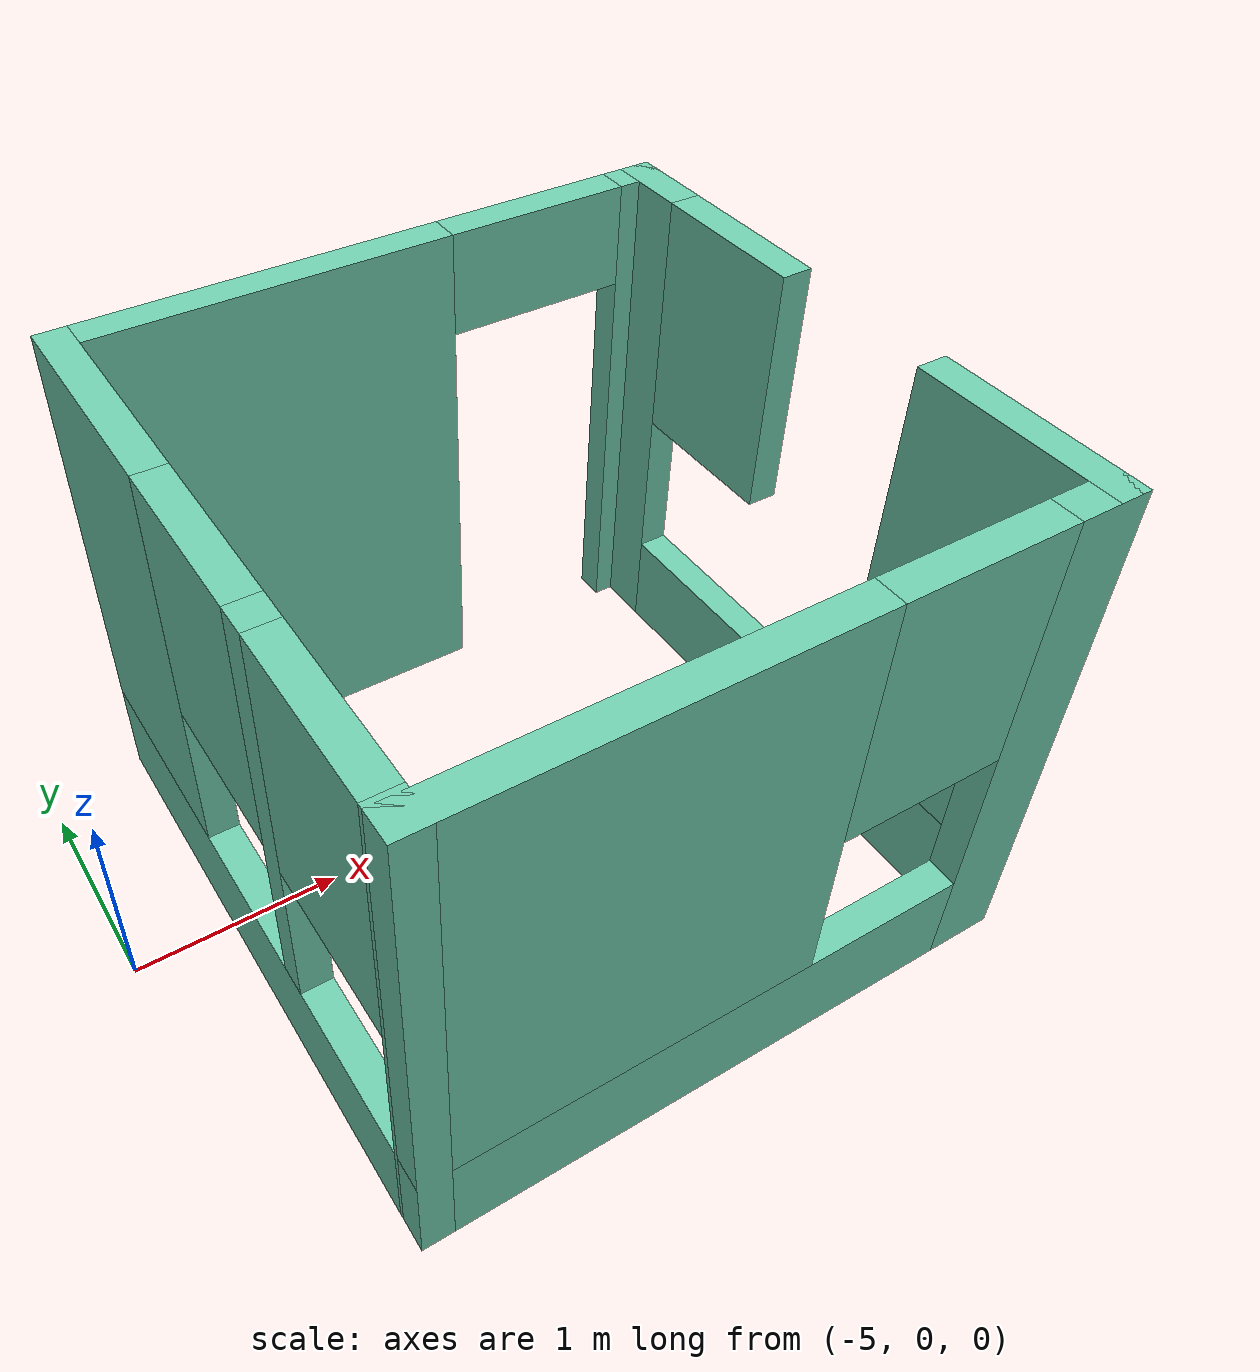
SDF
<?xml version='1.0'?>
<sdf version='1.6'>
  <model name='myoffice'>
    <pose frame=''>-3.01634 -0.28678 0 0 -0 0</pose>
    <link name='Wall_6'>
      <pose frame=''>0 1.425 0 0 -0 0</pose>
      <visual name='Wall_6_Visual_0'>
        <pose frame=''>-0.575359 0 1.25 0 -0 0</pose>
        <geometry>
          <box>
            <size>1.84928 0.15 2.5</size>
          </box>
        </geometry>
        <material>
          <script>
            <uri>file://media/materials/scripts/gazebo.material</uri>
            <name>Gazebo/Grey</name>
          </script>
          <ambient>0.435294 0.796078 0.67451 1</ambient>
        </material>
        <meta>
          <layer>0</layer>
        </meta>
      </visual>
      <collision name='Wall_6_Collision_0'>
        <geometry>
          <box>
            <size>1.84928 0.15 2.5</size>
          </box>
        </geometry>
        <pose frame=''>-0.575359 0 1.25 0 -0 0</pose>
      </collision>
      <visual name='Wall_6_Visual_1'>
        <pose frame=''>1.37464 0 1.25 0 -0 0</pose>
        <geometry>
          <box>
            <size>0.250719 0.15 2.5</size>
          </box>
        </geometry>
        <material>
          <script>
            <uri>file://media/materials/scripts/gazebo.material</uri>
            <name>Gazebo/Grey</name>
          </script>
          <ambient>0.435294 0.796078 0.67451 1</ambient>
        </material>
        <meta>
          <layer>0</layer>
        </meta>
      </visual>
      <collision name='Wall_6_Collision_1'>
        <geometry>
          <box>
            <size>0.250719 0.15 2.5</size>
          </box>
        </geometry>
        <pose frame=''>1.37464 0 1.25 0 -0 0</pose>
      </collision>
      <visual name='Wall_6_Visual_2'>
        <pose frame=''>0.799281 0 2.25 0 -0 0</pose>
        <geometry>
          <box>
            <size>0.9 0.15 0.5</size>
          </box>
        </geometry>
        <material>
          <script>
            <uri>file://media/materials/scripts/gazebo.material</uri>
            <name>Gazebo/Grey</name>
          </script>
          <ambient>0.435294 0.796078 0.67451 1</ambient>
        </material>
        <meta>
          <layer>0</layer>
        </meta>
      </visual>
      <collision name='Wall_6_Collision_2'>
        <geometry>
          <box>
            <size>0.9 0.15 0.5</size>
          </box>
        </geometry>
        <pose frame=''>0.799281 0 2.25 0 -0 0</pose>
      </collision>
    </link>
    <link name='Wall_7'>
      <pose frame=''>1.425 0 0 0 0 -1.5708</pose>
      <visual name='Wall_7_Visual_0'>
        <pose frame=''>-1.29818 0 1.25 0 -0 0</pose>
        <geometry>
          <box>
            <size>0.403644 0.15 2.5</size>
          </box>
        </geometry>
        <material>
          <script>
            <uri>file://media/materials/scripts/gazebo.material</uri>
            <name>Gazebo/Grey</name>
          </script>
          <ambient>0.435294 0.796078 0.67451 1</ambient>
        </material>
        <meta>
          <layer>0</layer>
        </meta>
      </visual>
      <collision name='Wall_7_Collision_0'>
        <geometry>
          <box>
            <size>0.403644 0.15 2.5</size>
          </box>
        </geometry>
        <pose frame=''>-1.29818 0 1.25 0 -0 0</pose>
      </collision>
      <visual name='Wall_7_Visual_1'>
        <pose frame=''>0.201822 0 0.25 0 -0 0</pose>
        <geometry>
          <box>
            <size>2.59636 0.15 0.5</size>
          </box>
        </geometry>
        <material>
          <script>
            <uri>file://media/materials/scripts/gazebo.material</uri>
            <name>Gazebo/Grey</name>
          </script>
          <ambient>0.435294 0.796078 0.67451 1</ambient>
        </material>
        <meta>
          <layer>0</layer>
        </meta>
      </visual>
      <collision name='Wall_7_Collision_1'>
        <geometry>
          <box>
            <size>2.59636 0.15 0.5</size>
          </box>
        </geometry>
        <pose frame=''>0.201822 0 0.25 0 -0 0</pose>
      </collision>
      <visual name='Wall_7_Visual_2'>
        <pose frame=''>0.998102 0 1.5 0 -0 0</pose>
        <geometry>
          <box>
            <size>1.0038 0.15 2</size>
          </box>
        </geometry>
        <material>
          <script>
            <uri>file://media/materials/scripts/gazebo.material</uri>
            <name>Gazebo/Grey</name>
          </script>
          <ambient>0.435294 0.796078 0.67451 1</ambient>
        </material>
        <meta>
          <layer>0</layer>
        </meta>
      </visual>
      <collision name='Wall_7_Collision_2'>
        <geometry>
          <box>
            <size>1.0038 0.15 2</size>
          </box>
        </geometry>
        <pose frame=''>0.998102 0 1.5 0 -0 0</pose>
      </collision>
      <visual name='Wall_7_Visual_3'>
        <pose frame=''>-0.700076 0 1.9 0 -0 0</pose>
        <geometry>
          <box>
            <size>0.79256 0.15 1.2</size>
          </box>
        </geometry>
        <material>
          <script>
            <uri>file://media/materials/scripts/gazebo.material</uri>
            <name>Gazebo/Grey</name>
          </script>
          <ambient>0.435294 0.796078 0.67451 1</ambient>
        </material>
        <meta>
          <layer>0</layer>
        </meta>
      </visual>
      <collision name='Wall_7_Collision_3'>
        <geometry>
          <box>
            <size>0.79256 0.15 1.2</size>
          </box>
        </geometry>
        <pose frame=''>-0.700076 0 1.9 0 -0 0</pose>
      </collision>
    </link>
    <link name='Wall_8'>
      <pose frame=''>0 -1.425 0 0 -0 3.14159</pose>
      <visual name='Wall_8_Visual_0'>
        <pose frame=''>-1.33047 0 1.25 0 -0 0</pose>
        <geometry>
          <box>
            <size>0.339069 0.15 2.5</size>
          </box>
        </geometry>
        <material>
          <script>
            <uri>file://media/materials/scripts/gazebo.material</uri>
            <name>Gazebo/Grey</name>
          </script>
          <ambient>0.435294 0.796078 0.67451 1</ambient>
        </material>
        <meta>
          <layer>0</layer>
        </meta>
      </visual>
      <collision name='Wall_8_Collision_0'>
        <geometry>
          <box>
            <size>0.339069 0.15 2.5</size>
          </box>
        </geometry>
        <pose frame=''>-1.33047 0 1.25 0 -0 0</pose>
      </collision>
      <visual name='Wall_8_Visual_1'>
        <pose frame=''>0.169534 0 0.25 0 -0 0</pose>
        <geometry>
          <box>
            <size>2.66093 0.15 0.5</size>
          </box>
        </geometry>
        <material>
          <script>
            <uri>file://media/materials/scripts/gazebo.material</uri>
            <name>Gazebo/Grey</name>
          </script>
          <ambient>0.435294 0.796078 0.67451 1</ambient>
        </material>
        <meta>
          <layer>0</layer>
        </meta>
      </visual>
      <collision name='Wall_8_Collision_1'>
        <geometry>
          <box>
            <size>2.66093 0.15 0.5</size>
          </box>
        </geometry>
        <pose frame=''>0.169534 0 0.25 0 -0 0</pose>
      </collision>
      <visual name='Wall_8_Visual_2'>
        <pose frame=''>0.569534 0 1.5 0 -0 0</pose>
        <geometry>
          <box>
            <size>1.86093 0.15 2</size>
          </box>
        </geometry>
        <material>
          <script>
            <uri>file://media/materials/scripts/gazebo.material</uri>
            <name>Gazebo/Grey</name>
          </script>
          <ambient>0.435294 0.796078 0.67451 1</ambient>
        </material>
        <meta>
          <layer>0</layer>
        </meta>
      </visual>
      <collision name='Wall_8_Collision_2'>
        <geometry>
          <box>
            <size>1.86093 0.15 2</size>
          </box>
        </geometry>
        <pose frame=''>0.569534 0 1.5 0 -0 0</pose>
      </collision>
      <visual name='Wall_8_Visual_3'>
        <pose frame=''>-0.760931 0 1.9 0 -0 0</pose>
        <geometry>
          <box>
            <size>0.8 0.15 1.2</size>
          </box>
        </geometry>
        <material>
          <script>
            <uri>file://media/materials/scripts/gazebo.material</uri>
            <name>Gazebo/Grey</name>
          </script>
          <ambient>0.435294 0.796078 0.67451 1</ambient>
        </material>
        <meta>
          <layer>0</layer>
        </meta>
      </visual>
      <collision name='Wall_8_Collision_3'>
        <geometry>
          <box>
            <size>0.8 0.15 1.2</size>
          </box>
        </geometry>
        <pose frame=''>-0.760931 0 1.9 0 -0 0</pose>
      </collision>
    </link>
    <link name='Wall_9'>
      <pose frame=''>-1.425 0 0 0 -0 1.5708</pose>
      <visual name='Wall_9_Visual_0'>
        <pose frame=''>-1.41356 0 1.25 0 -0 0</pose>
        <geometry>
          <box>
            <size>0.172887 0.15 2.5</size>
          </box>
        </geometry>
        <material>
          <script>
            <uri>file://media/materials/scripts/gazebo.material</uri>
            <name>Gazebo/Grey</name>
          </script>
          <ambient>0.435294 0.796078 0.67451 1</ambient>
        </material>
        <meta>
          <layer>0</layer>
        </meta>
      </visual>
      <collision name='Wall_9_Collision_0'>
        <geometry>
          <box>
            <size>0.172887 0.15 2.5</size>
          </box>
        </geometry>
        <pose frame=''>-1.41356 0 1.25 0 -0 0</pose>
      </collision>
      <visual name='Wall_9_Visual_1'>
        <pose frame=''>0.086443 0 0.25 0 -0 0</pose>
        <geometry>
          <box>
            <size>2.82711 0.15 0.5</size>
          </box>
        </geometry>
        <material>
          <script>
            <uri>file://media/materials/scripts/gazebo.material</uri>
            <name>Gazebo/Grey</name>
          </script>
          <ambient>0.435294 0.796078 0.67451 1</ambient>
        </material>
        <meta>
          <layer>0</layer>
        </meta>
      </visual>
      <collision name='Wall_9_Collision_1'>
        <geometry>
          <box>
            <size>2.82711 0.15 0.5</size>
          </box>
        </geometry>
        <pose frame=''>0.086443 0 0.25 0 -0 0</pose>
      </collision>
      <visual name='Wall_9_Visual_2'>
        <pose frame=''>-0.454134 0 1.5 0 -0 0</pose>
        <geometry>
          <box>
            <size>0.145959 0.15 2</size>
          </box>
        </geometry>
        <material>
          <script>
            <uri>file://media/materials/scripts/gazebo.material</uri>
            <name>Gazebo/Grey</name>
          </script>
          <ambient>0.435294 0.796078 0.67451 1</ambient>
        </material>
        <meta>
          <layer>0</layer>
        </meta>
      </visual>
      <collision name='Wall_9_Collision_2'>
        <geometry>
          <box>
            <size>0.145959 0.15 2</size>
          </box>
        </geometry>
        <pose frame=''>-0.454134 0 1.5 0 -0 0</pose>
      </collision>
      <visual name='Wall_9_Visual_3'>
        <pose frame=''>0.959423 0 1.5 0 -0 0</pose>
        <geometry>
          <box>
            <size>1.08116 0.15 2</size>
          </box>
        </geometry>
        <material>
          <script>
            <uri>file://media/materials/scripts/gazebo.material</uri>
            <name>Gazebo/Grey</name>
          </script>
          <ambient>0.435294 0.796078 0.67451 1</ambient>
        </material>
        <meta>
          <layer>0</layer>
        </meta>
      </visual>
      <collision name='Wall_9_Collision_3'>
        <geometry>
          <box>
            <size>1.08116 0.15 2</size>
          </box>
        </geometry>
        <pose frame=''>0.959423 0 1.5 0 -0 0</pose>
      </collision>
      <visual name='Wall_9_Visual_4'>
        <pose frame=''>-0.927113 0 1.9 0 -0 0</pose>
        <geometry>
          <box>
            <size>0.8 0.15 1.2</size>
          </box>
        </geometry>
        <material>
          <script>
            <uri>file://media/materials/scripts/gazebo.material</uri>
            <name>Gazebo/Grey</name>
          </script>
          <ambient>0.435294 0.796078 0.67451 1</ambient>
        </material>
        <meta>
          <layer>0</layer>
        </meta>
      </visual>
      <collision name='Wall_9_Collision_4'>
        <geometry>
          <box>
            <size>0.8 0.15 1.2</size>
          </box>
        </geometry>
        <pose frame=''>-0.927113 0 1.9 0 -0 0</pose>
      </collision>
      <visual name='Wall_9_Visual_5'>
        <pose frame=''>0.018845 0 1.9 0 -0 0</pose>
        <geometry>
          <box>
            <size>0.8 0.15 1.2</size>
          </box>
        </geometry>
        <material>
          <script>
            <uri>file://media/materials/scripts/gazebo.material</uri>
            <name>Gazebo/Grey</name>
          </script>
          <ambient>0.435294 0.796078 0.67451 1</ambient>
        </material>
        <meta>
          <layer>0</layer>
        </meta>
      </visual>
      <collision name='Wall_9_Collision_5'>
        <geometry>
          <box>
            <size>0.8 0.15 1.2</size>
          </box>
        </geometry>
        <pose frame=''>0.018845 0 1.9 0 -0 0</pose>
      </collision>
    </link>
    <static>1</static>
  </model>
</sdf>
